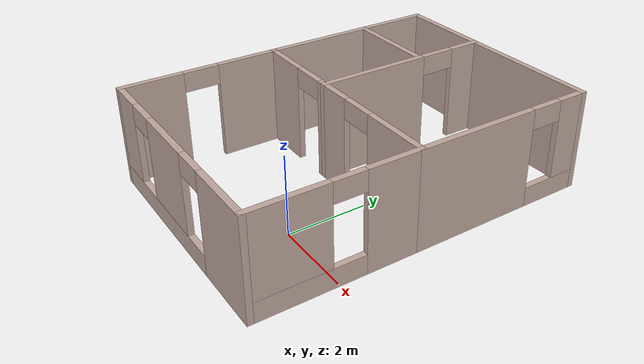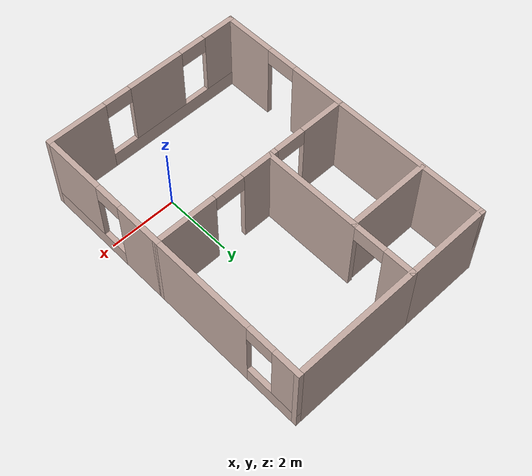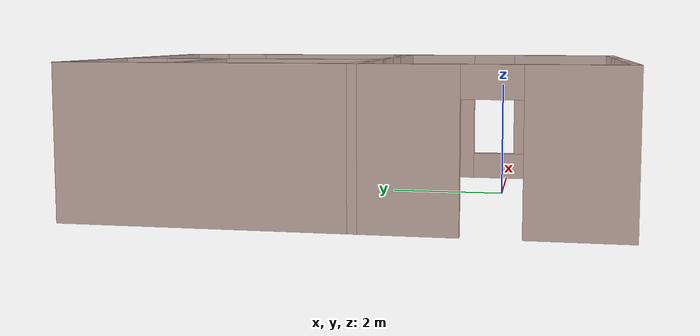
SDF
<?xml version='1.0'?>
<sdf version='1.7'>
  <model name='Apartment'>
    <pose>-1 2.3 0 0 -0 0</pose>
    <link name='Wall_0'>
      <pose>-3 -2.3 0 0 -0 -1.5708</pose>
      <visual name='Wall_0_Visual_0'>
        <pose>-1.251 0 1.25 0 -0 0</pose>
        <geometry>
          <box>
            <size>1.648 0.15 2.5</size>
          </box>
        </geometry>
        <material>
          <script>
            <uri>file://media/materials/scripts/gazebo.material</uri>
            <name>Gazebo/Grey</name>
          </script>
          <ambient>0.760784 0.662745 0.627451 1</ambient>
        </material>
        <meta>
          <layer>0</layer>
        </meta>
      </visual>
      <collision name='Wall_0_Collision_0'>
        <geometry>
          <box>
            <size>1.648 0.15 2.5</size>
          </box>
        </geometry>
        <pose>-1.251 0 1.25 0 -0 0</pose>
      </collision>
      <visual name='Wall_0_Visual_1'>
        <pose>1.274 0 1.25 0 -0 0</pose>
        <geometry>
          <box>
            <size>1.602 0.15 2.5</size>
          </box>
        </geometry>
        <material>
          <script>
            <uri>file://media/materials/scripts/gazebo.material</uri>
            <name>Gazebo/Grey</name>
          </script>
          <ambient>0.760784 0.662745 0.627451 1</ambient>
        </material>
        <meta>
          <layer>0</layer>
        </meta>
      </visual>
      <collision name='Wall_0_Collision_1'>
        <geometry>
          <box>
            <size>1.602 0.15 2.5</size>
          </box>
        </geometry>
        <pose>1.274 0 1.25 0 -0 0</pose>
      </collision>
      <visual name='Wall_0_Visual_2'>
        <pose>0.023004 0 2.25 0 -0 0</pose>
        <geometry>
          <box>
            <size>0.9 0.15 0.5</size>
          </box>
        </geometry>
        <material>
          <script>
            <uri>file://media/materials/scripts/gazebo.material</uri>
            <name>Gazebo/Grey</name>
          </script>
          <ambient>0.760784 0.662745 0.627451 1</ambient>
        </material>
        <meta>
          <layer>0</layer>
        </meta>
      </visual>
      <collision name='Wall_0_Collision_2'>
        <geometry>
          <box>
            <size>0.9 0.15 0.5</size>
          </box>
        </geometry>
        <pose>0.023004 0 2.25 0 -0 0</pose>
      </collision>
    </link>
    <link name='Wall_10'>
      <collision name='Wall_10_Collision'>
        <geometry>
          <box>
            <size>4.75 0.15 2.5</size>
          </box>
        </geometry>
        <pose>0 0 1.25 0 -0 0</pose>
      </collision>
      <visual name='Wall_10_Visual'>
        <pose>0 0 1.25 0 -0 0</pose>
        <geometry>
          <box>
            <size>4.75 0.15 2.5</size>
          </box>
        </geometry>
        <material>
          <script>
            <uri>file://media/materials/scripts/gazebo.material</uri>
            <name>Gazebo/Grey</name>
          </script>
          <ambient>0.760784 0.662745 0.627451 1</ambient>
        </material>
        <meta>
          <layer>0</layer>
        </meta>
      </visual>
      <pose>-3 2 0 0 -0 1.5708</pose>
    </link>
    <link name='Wall_11'>
      <collision name='Wall_11_Collision'>
        <geometry>
          <box>
            <size>2.55 0.15 2.5</size>
          </box>
        </geometry>
        <pose>0 0 1.25 0 -0 0</pose>
      </collision>
      <visual name='Wall_11_Visual'>
        <pose>0 0 1.25 0 -0 0</pose>
        <geometry>
          <box>
            <size>2.55 0.15 2.5</size>
          </box>
        </geometry>
        <material>
          <script>
            <uri>file://media/materials/scripts/gazebo.material</uri>
            <name>Gazebo/Grey</name>
          </script>
          <ambient>0.760784 0.662745 0.627451 1</ambient>
        </material>
        <meta>
          <layer>0</layer>
        </meta>
      </visual>
      <pose>-1.8 4.3 0 0 -0 0</pose>
    </link>
    <link name='Wall_13'>
      <collision name='Wall_13_Collision'>
        <geometry>
          <box>
            <size>2.5 0.15 2.5</size>
          </box>
        </geometry>
        <pose>0 0 1.25 0 -0 0</pose>
      </collision>
      <visual name='Wall_13_Visual'>
        <pose>0 0 1.25 0 -0 0</pose>
        <geometry>
          <box>
            <size>2.5 0.15 2.5</size>
          </box>
        </geometry>
        <material>
          <script>
            <uri>file://media/materials/scripts/gazebo.material</uri>
            <name>Gazebo/Grey</name>
          </script>
          <ambient>0.760784 0.662745 0.627451 1</ambient>
        </material>
        <meta>
          <layer>0</layer>
        </meta>
      </visual>
      <pose>-1.7824 2.46927 0 0 -0 3.14159</pose>
    </link>
    <link name='Wall_2'>
      <pose>0 -0.3 0 0 -0 0</pose>
      <visual name='Wall_2_Visual_0'>
        <pose>-2.38977 0 1.25 0 -0 0</pose>
        <geometry>
          <box>
            <size>1.37047 0.15 2.5</size>
          </box>
        </geometry>
        <material>
          <script>
            <uri>file://media/materials/scripts/gazebo.material</uri>
            <name>Gazebo/Grey</name>
          </script>
          <ambient>0.760784 0.662745 0.627451 1</ambient>
        </material>
        <meta>
          <layer>0</layer>
        </meta>
      </visual>
      <collision name='Wall_2_Collision_0'>
        <geometry>
          <box>
            <size>1.37047 0.15 2.5</size>
          </box>
        </geometry>
        <pose>-2.38977 0 1.25 0 -0 0</pose>
      </collision>
      <visual name='Wall_2_Visual_1'>
        <pose>-0.240108 0 1.25 0 -0 0</pose>
        <geometry>
          <box>
            <size>1.12885 0.15 2.5</size>
          </box>
        </geometry>
        <material>
          <script>
            <uri>file://media/materials/scripts/gazebo.material</uri>
            <name>Gazebo/Grey</name>
          </script>
          <ambient>0.760784 0.662745 0.627451 1</ambient>
        </material>
        <meta>
          <layer>0</layer>
        </meta>
      </visual>
      <collision name='Wall_2_Collision_1'>
        <geometry>
          <box>
            <size>1.12885 0.15 2.5</size>
          </box>
        </geometry>
        <pose>-0.240108 0 1.25 0 -0 0</pose>
      </collision>
      <visual name='Wall_2_Visual_2'>
        <pose>2.14966 0 1.25 0 -0 0</pose>
        <geometry>
          <box>
            <size>1.85068 0.15 2.5</size>
          </box>
        </geometry>
        <material>
          <script>
            <uri>file://media/materials/scripts/gazebo.material</uri>
            <name>Gazebo/Grey</name>
          </script>
          <ambient>0.760784 0.662745 0.627451 1</ambient>
        </material>
        <meta>
          <layer>0</layer>
        </meta>
      </visual>
      <collision name='Wall_2_Collision_2'>
        <geometry>
          <box>
            <size>1.85068 0.15 2.5</size>
          </box>
        </geometry>
        <pose>2.14966 0 1.25 0 -0 0</pose>
      </collision>
      <visual name='Wall_2_Visual_3'>
        <pose>-1.25453 0 2.25 0 -0 0</pose>
        <geometry>
          <box>
            <size>0.9 0.15 0.5</size>
          </box>
        </geometry>
        <material>
          <script>
            <uri>file://media/materials/scripts/gazebo.material</uri>
            <name>Gazebo/Grey</name>
          </script>
          <ambient>0.760784 0.662745 0.627451 1</ambient>
        </material>
        <meta>
          <layer>0</layer>
        </meta>
      </visual>
      <collision name='Wall_2_Collision_3'>
        <geometry>
          <box>
            <size>0.9 0.15 0.5</size>
          </box>
        </geometry>
        <pose>-1.25453 0 2.25 0 -0 0</pose>
      </collision>
      <visual name='Wall_2_Visual_4'>
        <pose>0.774316 0 2.25 0 -0 0</pose>
        <geometry>
          <box>
            <size>0.9 0.15 0.5</size>
          </box>
        </geometry>
        <material>
          <script>
            <uri>file://media/materials/scripts/gazebo.material</uri>
            <name>Gazebo/Grey</name>
          </script>
          <ambient>0.760784 0.662745 0.627451 1</ambient>
        </material>
        <meta>
          <layer>0</layer>
        </meta>
      </visual>
      <collision name='Wall_2_Collision_4'>
        <geometry>
          <box>
            <size>0.9 0.15 0.5</size>
          </box>
        </geometry>
        <pose>0.774316 0 2.25 0 -0 0</pose>
      </collision>
    </link>
    <link name='Wall_3'>
      <pose>3 -2.3 0 0 -0 -1.5708</pose>
      <visual name='Wall_3_Visual_0'>
        <pose>-1.36703 0 1.25 0 -0 0</pose>
        <geometry>
          <box>
            <size>1.41593 0.15 2.5</size>
          </box>
        </geometry>
        <material>
          <script>
            <uri>file://media/materials/scripts/gazebo.material</uri>
            <name>Gazebo/Grey</name>
          </script>
          <ambient>0.760784 0.662745 0.627451 1</ambient>
        </material>
        <meta>
          <layer>0</layer>
        </meta>
      </visual>
      <collision name='Wall_3_Collision_0'>
        <geometry>
          <box>
            <size>1.41593 0.15 2.5</size>
          </box>
        </geometry>
        <pose>-1.36703 0 1.25 0 -0 0</pose>
      </collision>
      <visual name='Wall_3_Visual_1'>
        <pose>0.707968 0 0.25 0 -0 0</pose>
        <geometry>
          <box>
            <size>2.73407 0.15 0.5</size>
          </box>
        </geometry>
        <material>
          <script>
            <uri>file://media/materials/scripts/gazebo.material</uri>
            <name>Gazebo/Grey</name>
          </script>
          <ambient>0.760784 0.662745 0.627451 1</ambient>
        </material>
        <meta>
          <layer>0</layer>
        </meta>
      </visual>
      <collision name='Wall_3_Collision_1'>
        <geometry>
          <box>
            <size>2.73407 0.15 0.5</size>
          </box>
        </geometry>
        <pose>0.707968 0 0.25 0 -0 0</pose>
      </collision>
      <visual name='Wall_3_Visual_2'>
        <pose>1.10797 0 1.5 0 -0 0</pose>
        <geometry>
          <box>
            <size>1.93406 0.15 2</size>
          </box>
        </geometry>
        <material>
          <script>
            <uri>file://media/materials/scripts/gazebo.material</uri>
            <name>Gazebo/Grey</name>
          </script>
          <ambient>0.760784 0.662745 0.627451 1</ambient>
        </material>
        <meta>
          <layer>0</layer>
        </meta>
      </visual>
      <collision name='Wall_3_Collision_2'>
        <geometry>
          <box>
            <size>1.93406 0.15 2</size>
          </box>
        </geometry>
        <pose>1.10797 0 1.5 0 -0 0</pose>
      </collision>
      <visual name='Wall_3_Visual_3'>
        <pose>-0.259065 0 2.25 0 -0 0</pose>
        <geometry>
          <box>
            <size>0.8 0.15 0.5</size>
          </box>
        </geometry>
        <material>
          <script>
            <uri>file://media/materials/scripts/gazebo.material</uri>
            <name>Gazebo/Grey</name>
          </script>
          <ambient>0.760784 0.662745 0.627451 1</ambient>
        </material>
        <meta>
          <layer>0</layer>
        </meta>
      </visual>
      <collision name='Wall_3_Collision_3'>
        <geometry>
          <box>
            <size>0.8 0.15 0.5</size>
          </box>
        </geometry>
        <pose>-0.259065 0 2.25 0 -0 0</pose>
      </collision>
    </link>
    <link name='Wall_4'>
      <pose>0 -4.3 0 0 -0 3.14159</pose>
      <visual name='Wall_4_Visual_0'>
        <pose>-2.18621 0 1.25 0 -0 0</pose>
        <geometry>
          <box>
            <size>1.77758 0.15 2.5</size>
          </box>
        </geometry>
        <material>
          <script>
            <uri>file://media/materials/scripts/gazebo.material</uri>
            <name>Gazebo/Grey</name>
          </script>
          <ambient>0.760784 0.662745 0.627451 1</ambient>
        </material>
        <meta>
          <layer>0</layer>
        </meta>
      </visual>
      <collision name='Wall_4_Collision_0'>
        <geometry>
          <box>
            <size>1.77758 0.15 2.5</size>
          </box>
        </geometry>
        <pose>-2.18621 0 1.25 0 -0 0</pose>
      </collision>
      <visual name='Wall_4_Visual_1'>
        <pose>0.888791 0 0.25 0 -0 0</pose>
        <geometry>
          <box>
            <size>4.37242 0.15 0.5</size>
          </box>
        </geometry>
        <material>
          <script>
            <uri>file://media/materials/scripts/gazebo.material</uri>
            <name>Gazebo/Grey</name>
          </script>
          <ambient>0.760784 0.662745 0.627451 1</ambient>
        </material>
        <meta>
          <layer>0</layer>
        </meta>
      </visual>
      <collision name='Wall_4_Collision_1'>
        <geometry>
          <box>
            <size>4.37242 0.15 0.5</size>
          </box>
        </geometry>
        <pose>0.888791 0 0.25 0 -0 0</pose>
      </collision>
      <visual name='Wall_4_Visual_2'>
        <pose>0.361866 0 1.5 0 -0 0</pose>
        <geometry>
          <box>
            <size>1.71857 0.15 2</size>
          </box>
        </geometry>
        <material>
          <script>
            <uri>file://media/materials/scripts/gazebo.material</uri>
            <name>Gazebo/Grey</name>
          </script>
          <ambient>0.760784 0.662745 0.627451 1</ambient>
        </material>
        <meta>
          <layer>0</layer>
        </meta>
      </visual>
      <collision name='Wall_4_Collision_2'>
        <geometry>
          <box>
            <size>1.71857 0.15 2</size>
          </box>
        </geometry>
        <pose>0.361866 0 1.5 0 -0 0</pose>
      </collision>
      <visual name='Wall_4_Visual_3'>
        <pose>2.54807 0 1.5 0 -0 0</pose>
        <geometry>
          <box>
            <size>1.05385 0.15 2</size>
          </box>
        </geometry>
        <material>
          <script>
            <uri>file://media/materials/scripts/gazebo.material</uri>
            <name>Gazebo/Grey</name>
          </script>
          <ambient>0.760784 0.662745 0.627451 1</ambient>
        </material>
        <meta>
          <layer>0</layer>
        </meta>
      </visual>
      <collision name='Wall_4_Collision_3'>
        <geometry>
          <box>
            <size>1.05385 0.15 2</size>
          </box>
        </geometry>
        <pose>2.54807 0 1.5 0 -0 0</pose>
      </collision>
      <visual name='Wall_4_Visual_4'>
        <pose>-0.897419 0 2.25 0 -0 0</pose>
        <geometry>
          <box>
            <size>0.8 0.15 0.5</size>
          </box>
        </geometry>
        <material>
          <script>
            <uri>file://media/materials/scripts/gazebo.material</uri>
            <name>Gazebo/Grey</name>
          </script>
          <ambient>0.760784 0.662745 0.627451 1</ambient>
        </material>
        <meta>
          <layer>0</layer>
        </meta>
      </visual>
      <collision name='Wall_4_Collision_4'>
        <geometry>
          <box>
            <size>0.8 0.15 0.5</size>
          </box>
        </geometry>
        <pose>-0.897419 0 2.25 0 -0 0</pose>
      </collision>
      <visual name='Wall_4_Visual_5'>
        <pose>1.62115 0 2.25 0 -0 0</pose>
        <geometry>
          <box>
            <size>0.8 0.15 0.5</size>
          </box>
        </geometry>
        <material>
          <script>
            <uri>file://media/materials/scripts/gazebo.material</uri>
            <name>Gazebo/Grey</name>
          </script>
          <ambient>0.760784 0.662745 0.627451 1</ambient>
        </material>
        <meta>
          <layer>0</layer>
        </meta>
      </visual>
      <collision name='Wall_4_Collision_5'>
        <geometry>
          <box>
            <size>0.8 0.15 0.5</size>
          </box>
        </geometry>
        <pose>1.62115 0 2.25 0 -0 0</pose>
      </collision>
    </link>
    <link name='Wall_6'>
      <pose>3 2 0 0 -0 1.5708</pose>
      <visual name='Wall_6_Visual_0'>
        <pose>-0.810693 0 1.25 0 -0 0</pose>
        <geometry>
          <box>
            <size>3.12861 0.15 2.5</size>
          </box>
        </geometry>
        <material>
          <script>
            <uri>file://media/materials/scripts/gazebo.material</uri>
            <name>Gazebo/Grey</name>
          </script>
          <ambient>0.760784 0.662745 0.627451 1</ambient>
        </material>
        <meta>
          <layer>0</layer>
        </meta>
      </visual>
      <collision name='Wall_6_Collision_0'>
        <geometry>
          <box>
            <size>3.12861 0.15 2.5</size>
          </box>
        </geometry>
        <pose>-0.810693 0 1.25 0 -0 0</pose>
      </collision>
      <visual name='Wall_6_Visual_1'>
        <pose>1.56431 0 0.25 0 -0 0</pose>
        <geometry>
          <box>
            <size>1.62139 0.15 0.5</size>
          </box>
        </geometry>
        <material>
          <script>
            <uri>file://media/materials/scripts/gazebo.material</uri>
            <name>Gazebo/Grey</name>
          </script>
          <ambient>0.760784 0.662745 0.627451 1</ambient>
        </material>
        <meta>
          <layer>0</layer>
        </meta>
      </visual>
      <collision name='Wall_6_Collision_1'>
        <geometry>
          <box>
            <size>1.62139 0.15 0.5</size>
          </box>
        </geometry>
        <pose>1.56431 0 0.25 0 -0 0</pose>
      </collision>
      <visual name='Wall_6_Visual_2'>
        <pose>1.96431 0 1.5 0 -0 0</pose>
        <geometry>
          <box>
            <size>0.821386 0.15 2</size>
          </box>
        </geometry>
        <material>
          <script>
            <uri>file://media/materials/scripts/gazebo.material</uri>
            <name>Gazebo/Grey</name>
          </script>
          <ambient>0.760784 0.662745 0.627451 1</ambient>
        </material>
        <meta>
          <layer>0</layer>
        </meta>
      </visual>
      <collision name='Wall_6_Collision_2'>
        <geometry>
          <box>
            <size>0.821386 0.15 2</size>
          </box>
        </geometry>
        <pose>1.96431 0 1.5 0 -0 0</pose>
      </collision>
      <visual name='Wall_6_Visual_3'>
        <pose>1.15361 0 2.25 0 -0 0</pose>
        <geometry>
          <box>
            <size>0.8 0.15 0.5</size>
          </box>
        </geometry>
        <material>
          <script>
            <uri>file://media/materials/scripts/gazebo.material</uri>
            <name>Gazebo/Grey</name>
          </script>
          <ambient>0.760784 0.662745 0.627451 1</ambient>
        </material>
        <meta>
          <layer>0</layer>
        </meta>
      </visual>
      <collision name='Wall_6_Collision_3'>
        <geometry>
          <box>
            <size>0.8 0.15 0.5</size>
          </box>
        </geometry>
        <pose>1.15361 0 2.25 0 -0 0</pose>
      </collision>
    </link>
    <link name='Wall_7'>
      <collision name='Wall_7_Collision'>
        <geometry>
          <box>
            <size>3.75 0.15 2.5</size>
          </box>
        </geometry>
        <pose>0 0 1.25 0 -0 0</pose>
      </collision>
      <visual name='Wall_7_Visual'>
        <pose>0 0 1.25 0 -0 0</pose>
        <geometry>
          <box>
            <size>3.75 0.15 2.5</size>
          </box>
        </geometry>
        <material>
          <script>
            <uri>file://media/materials/scripts/gazebo.material</uri>
            <name>Gazebo/Grey</name>
          </script>
          <ambient>0.760784 0.662745 0.627451 1</ambient>
        </material>
        <meta>
          <layer>0</layer>
        </meta>
      </visual>
      <pose>1.2 4.3 0 0 -0 3.14159</pose>
    </link>
    <link name='Wall_8'>
      <pose>-0.6 2 0 0 -0 -1.5708</pose>
      <visual name='Wall_8_Visual_0'>
        <pose>-1.92698 0 1.25 0 -0 0</pose>
        <geometry>
          <box>
            <size>0.896045 0.15 2.5</size>
          </box>
        </geometry>
        <material>
          <script>
            <uri>file://media/materials/scripts/gazebo.material</uri>
            <name>Gazebo/Grey</name>
          </script>
          <ambient>0.760784 0.662745 0.627451 1</ambient>
        </material>
        <meta>
          <layer>0</layer>
        </meta>
      </visual>
      <collision name='Wall_8_Collision_0'>
        <geometry>
          <box>
            <size>0.896045 0.15 2.5</size>
          </box>
        </geometry>
        <pose>-1.92698 0 1.25 0 -0 0</pose>
      </collision>
      <visual name='Wall_8_Visual_1'>
        <pose>0.898023 0 1.25 0 -0 0</pose>
        <geometry>
          <box>
            <size>2.95396 0.15 2.5</size>
          </box>
        </geometry>
        <material>
          <script>
            <uri>file://media/materials/scripts/gazebo.material</uri>
            <name>Gazebo/Grey</name>
          </script>
          <ambient>0.760784 0.662745 0.627451 1</ambient>
        </material>
        <meta>
          <layer>0</layer>
        </meta>
      </visual>
      <collision name='Wall_8_Collision_1'>
        <geometry>
          <box>
            <size>2.95396 0.15 2.5</size>
          </box>
        </geometry>
        <pose>0.898023 0 1.25 0 -0 0</pose>
      </collision>
      <visual name='Wall_8_Visual_2'>
        <pose>-1.02896 0 2.25 0 -0 0</pose>
        <geometry>
          <box>
            <size>0.9 0.15 0.5</size>
          </box>
        </geometry>
        <material>
          <script>
            <uri>file://media/materials/scripts/gazebo.material</uri>
            <name>Gazebo/Grey</name>
          </script>
          <ambient>0.760784 0.662745 0.627451 1</ambient>
        </material>
        <meta>
          <layer>0</layer>
        </meta>
      </visual>
      <collision name='Wall_8_Collision_2'>
        <geometry>
          <box>
            <size>0.9 0.15 0.5</size>
          </box>
        </geometry>
        <pose>-1.02896 0 2.25 0 -0 0</pose>
      </collision>
    </link>
    <static>1</static>
  </model>
</sdf>
